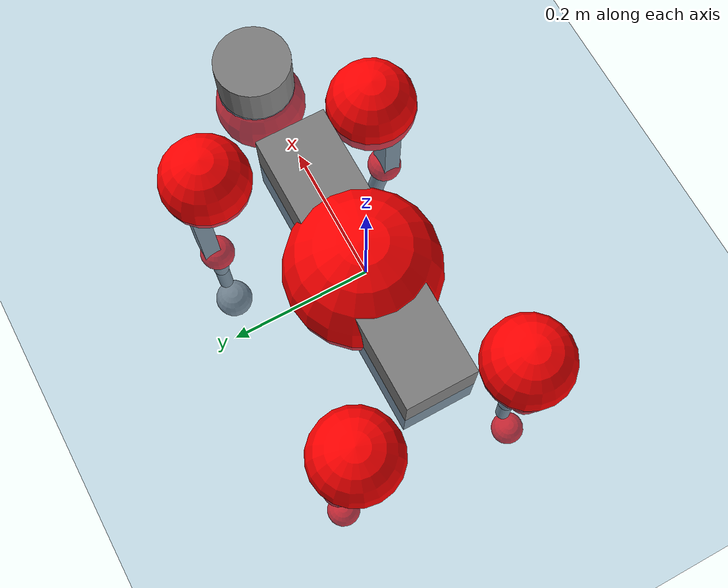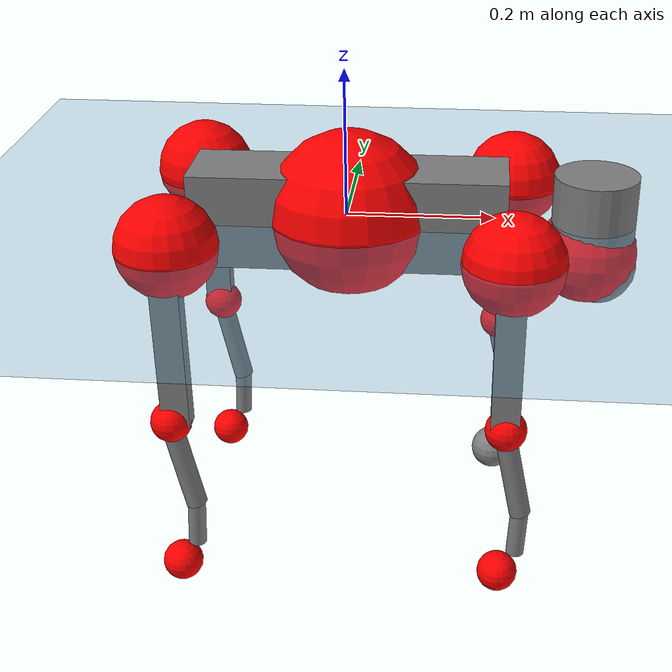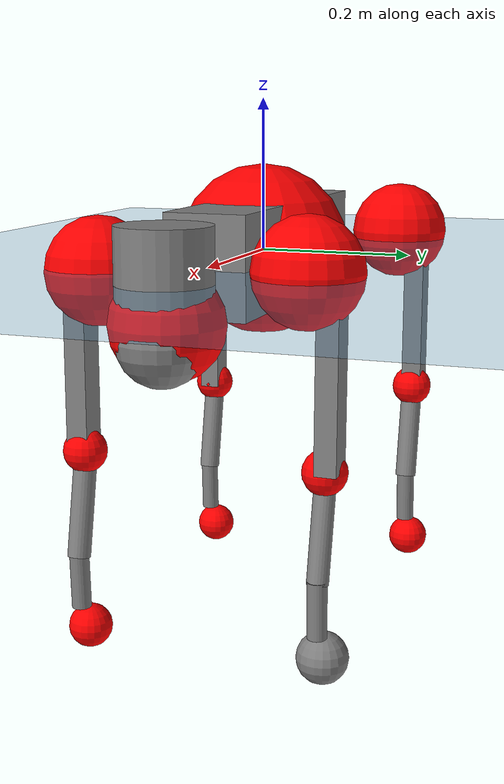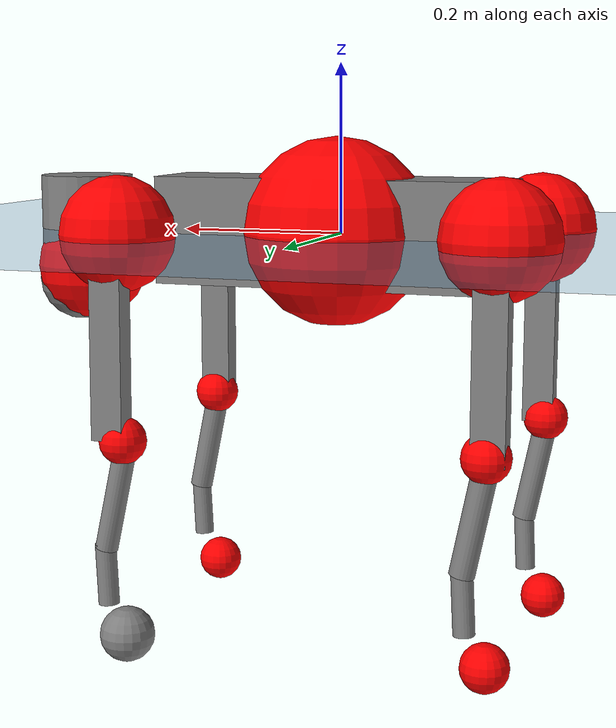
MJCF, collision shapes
<mujoco model="go2">
  <compiler angle="radian" assetdir="assets" balanceinertia="true" inertiafromgeom="false"/>

  <option timestep="0.005" density="1.2" viscosity="2e-05"/>

  <size nkey="1"/>

  <visual>
    <quality shadowsize="8192"/>
    <map shadowclip="0.5"/>
  </visual>

  <default>
    <default class="/">
      <geom contype="0" conaffinity="0" group="1" solref="-1000 -80"/>
      <site size="0.01 0.005 0.005" group="5"/>
      <general forcelimited="true" biastype="affine" gainprm="20" biasprm="0 -20 -0.5"/>
      <default class="go2">
        <joint armature="0.01" damping="0.01" frictionloss="0.2"/>
        <geom condim="1" margin="0.001"/>
        <default class="visual">
          <geom type="mesh" group="2"/>
        </default>
        <default class="collision">
          <geom group="3"/>
          <default class="foot">
            <geom size="0.022 0 0" condim="6" priority="1" friction="0.8 0.02 0.01" solimp="0.015 1 0.022"/>
          </default>
        </default>
        <default class="reward_collision_sphere">
          <geom group="5" rgba="1 0 0 1"/>
        </default>
      </default>
    </default>
  </default>

  <asset>
    <texture type="skybox" colorspace="auto" name="//unnamed_texture_0" builtin="gradient" rgb1="0.95 0.95 0.95" rgb2="0.95 0.95 0.95" width="100" height="600"/>
    <texture type="2d" colorspace="auto" name="texplane" builtin="checker" rgb1="0.345 0.575 0.748" rgb2="0.345 0.575 0.748" markrgb="1 1 1" width="512" height="512"/>
    <material name="MatPlane" class="/" texture="texplane" texuniform="true" texrepeat="2 2" specular="0.9"/>
    <material name="metal" class="/" rgba="0.9 0.95 0.95 1"/>
    <material name="black" class="/" rgba="0 0 0 1"/>
    <material name="white" class="/"/>
    <material name="gray" class="/" rgba="0.671705 0.692426 0.77427 1"/>
    <mesh name="base_0" class="/" file="base_0.obj"/>
    <mesh name="base_1" class="/" file="base_1.obj"/>
    <mesh name="base_2" class="/" file="base_2.obj"/>
    <mesh name="base_3" class="/" file="base_3.obj"/>
    <mesh name="base_4" class="/" file="base_4.obj"/>
    <mesh name="hip_0" class="/" file="hip_0.obj"/>
    <mesh name="hip_1" class="/" file="hip_1.obj"/>
    <mesh name="thigh_0" class="/" file="thigh_0.obj"/>
    <mesh name="thigh_1" class="/" file="thigh_1.obj"/>
    <mesh name="thigh_mirror_0" class="/" file="thigh_mirror_0.obj"/>
    <mesh name="thigh_mirror_1" class="/" file="thigh_mirror_1.obj"/>
    <mesh name="calf_0" class="/" file="calf_0.obj"/>
    <mesh name="calf_1" class="/" file="calf_1.obj"/>
    <mesh name="calf_mirror_0" class="/" file="calf_mirror_0.obj"/>
    <mesh name="calf_mirror_1" class="/" file="calf_mirror_1.obj"/>
    <mesh name="foot" class="/" file="foot.obj"/>
  </asset>

  <worldbody>
    <geom name="floor" class="/" size="100 100 0.125" type="plane" group="0" material="MatPlane"/>
    <light name="toplight_shadow" class="/" pos="0 0 5" dir="0.0990148 0.0990148 -0.990148" type="directional" ambient="0.04 0.04 0.04" diffuse="0.55 0.55 0.55" specular="0.12 0.12 0.12"/>
    <light name="toplight_fill" class="/" pos="0 0 5" dir="0.0990148 0.0990148 -0.990148" type="directional" castshadow="false" ambient="0.04 0.04 0.04" diffuse="0.3 0.3 0.3" specular="0.08 0.08 0.08"/>
    <body name="trunk" childclass="go2" pos="0.0047577 0.00171358 0.00231662" quat="0.999998 -0.00112721 -0.000850903 0.00126016">
      <inertial pos="0.0267443 -0.00282666 -0.00371206" quat="-0.0135217 0.700272 0.0188539 0.713499" mass="10.224" diaginertia="0.19246 0.178527 0.0361904"/>
      <joint name="//unnamed_joint_0" type="free" armature="0" damping="0" frictionloss="0"/>
      <geom name="//unnamed_geom_1" class="visual" material="black" mesh="base_0"/>
      <geom name="//unnamed_geom_2" class="visual" material="black" mesh="base_1"/>
      <geom name="//unnamed_geom_3" class="visual" material="black" mesh="base_2"/>
      <geom name="//unnamed_geom_4" class="visual" material="white" mesh="base_3"/>
      <geom name="//unnamed_geom_5" class="visual" material="gray" mesh="base_4"/>
      <geom name="trunk_1" class="collision" size="0.212529 0.0528215 0.0644027" type="box"/>
      <geom name="trunk_2" class="collision" size="0.0564936 0.0508442" pos="0.328292 0 0.011101" type="cylinder"/>
      <geom name="trunk_3" class="collision" size="0.053104" pos="0.337507 0 -0.0666058"/>
      <geom name="//unnamed_geom_9" class="reward_collision_sphere" size="0.112987"/>
      <geom name="//unnamed_geom_10" class="reward_collision_sphere" size="0.0677923" pos="0.322532 0 -0.0499543"/>
      <site name="imu" pos="-0.0438448 0.0493381 0.0501867" size="0.0112987"/>
      <camera name="track" pos="0 -2.25524 0" quat="0.707107 0.707107 0 0" mode="trackcom"/>
      <camera name="ego_camera" pos="0.359393 0 0.0499543" quat="-0.5 -0.5 0.5 0.5"/>
      <body name="FL_hip" pos="0.22258 0.0544882 0.00238777" quat="0.999989 -0.00064808 -0.0035071 -0.00310052">
        <inertial pos="-0.00376456 0.00447153 -0.000623926" quat="0.517377 0.494606 0.502346 0.485114" mass="0.880992" diaginertia="0.0016031 0.000979481 0.000704786"/>
        <joint name="FL_hip_joint" pos="0 0 0" axis="0.999834 -0.0080813 -0.0163454" range="-1.20342 1.04673" armature="0.00807502" damping="0.0287574" frictionloss="0.207512"/>
        <geom name="//unnamed_geom_11" class="visual" material="metal" mesh="hip_0"/>
        <geom name="//unnamed_geom_12" class="visual" material="gray" mesh="hip_1"/>
        <geom name="//unnamed_geom_13" class="collision" size="0.0519741 0.0225974" pos="0 0.0902096 0" quat="0.707107 0.707107 0 0" type="cylinder"/>
        <geom name="//unnamed_geom_14" class="reward_collision_sphere" size="0.0677923" pos="0 0.0789334 0"/>
        <body name="FL_thigh" pos="-0.002295 0.10754 0.00135823" quat="1 6.23114e-06 -0.000166844 6.81274e-05">
          <inertial pos="-0.00588285 -0.0171624 -0.0263889" quat="0.829696 0.0840428 -0.0195021 0.551508" mass="1.67207" diaginertia="0.0125887 0.0112903 0.00154183"/>
          <joint name="FL_thigh_joint" pos="0 0 0" axis="0.00814616 0.999948 -0.00606962" range="-1.57218 3.30406" armature="0.0129034" damping="0.0568855" frictionloss="0.22704"/>
          <geom name="//unnamed_geom_15" class="visual" material="metal" mesh="thigh_0"/>
          <geom name="//unnamed_geom_16" class="visual" material="gray" mesh="thigh_1"/>
          <geom name="//unnamed_geom_17" class="collision" size="0.120331 0.0138409 0.0192078" pos="0 0 -0.118225" quat="0.707107 0 0.707107 0" type="box"/>
          <body name="FL_calf" pos="-0.0102496 -0.00865459 -0.241052" quat="1 -0.000144911 -1.31112e-05 8.74303e-06">
            <inertial pos="0.00708837 0.0022874 -0.161227" quat="0.71031 0.00256382 -0.00479373 0.703868" mass="0.319652" diaginertia="0.00290574 0.00268761 9.08827e-05"/>
            <joint name="FL_calf_joint" pos="0 0 0" axis="0.00372067 0.999991 -0.00202475" stiffness="0.0482316" range="-2.80709 -0.695818" armature="0.0115488" damping="0" frictionloss="0.205088"/>
            <geom name="//unnamed_geom_18" class="visual" material="gray" mesh="calf_0"/>
            <geom name="//unnamed_geom_19" class="visual" material="black" mesh="calf_1"/>
            <geom name="FL_calf0" class="collision" size="0.0135585 0.0677923" pos="0.0092152 0 -0.0666058" quat="0.994493 0 -0.104807 0" type="cylinder"/>
            <geom name="//unnamed_geom_21" class="collision" size="0.0124286 0.0367208" pos="0.023038 0 -0.164294" quat="0.999688 0 0.0249974 0" type="cylinder"/>
            <geom name="//unnamed_geom_22" class="visual" pos="0 0 -0.236451" quat="1 0 0 0" material="black" mesh="foot"/>
            <geom name="FL_foot" class="foot" size="0.032881" pos="-0.0023038 0 -0.236451"/>
            <geom name="//unnamed_geom_24" class="reward_collision_sphere" size="0.0282468"/>
            <geom name="//unnamed_geom_25" class="reward_collision_sphere" size="0.0282468" pos="-0.0023038 0 -0.236451"/>
            <site name="FL_foot" class="foot" pos="-0.0023038 0 -0.236451" size="0.0112987"/>
          </body>
        </body>
      </body>
      <body name="FR_hip" pos="0.220631 -0.0547595 -0.00839343" quat="0.999999 -0.000174348 -7.31549e-05 0.00104827">
        <inertial pos="-0.00668702 0.00214221 0.00192346" quat="0.498084 0.472559 0.517327 0.510856" mass="0.87543" diaginertia="0.00165332 0.000956146 0.000735618"/>
        <joint name="FR_hip_joint" pos="0 0 0" axis="0.99997 -0.00569306 0.00524447" stiffness="0.0124769" range="-1.1484 1.09094" armature="0.0110792" damping="0" frictionloss="0.221748"/>
        <geom name="//unnamed_geom_26" class="visual" pos="0 1.52653e-10 6.54762e-09" quat="4.63268e-05 1 0 0" material="metal" mesh="hip_0"/>
        <geom name="//unnamed_geom_27" class="visual" pos="0 2.47469e-10 -1.61948e-08" quat="4.63268e-05 1 0 0" material="gray" mesh="hip_1"/>
        <geom name="//unnamed_geom_28" class="collision" size="0.0519741 0.0225974" pos="0 -0.0902096 0" quat="0.707107 0.707107 0 0" type="cylinder"/>
        <geom name="//unnamed_geom_29" class="reward_collision_sphere" size="0.0677923" pos="0 -0.0789334 0"/>
        <body name="FR_thigh" pos="-0.00204079 -0.107802 0.00585948" quat="1 1.56965e-05 -1.97349e-05 -1.57437e-05">
          <inertial pos="-0.00372635 0.0248491 -0.0276728" quat="0.556924 0.00964084 0.124609 0.821106" mass="1.48766" diaginertia="0.0111529 0.00951452 0.00132316"/>
          <joint name="FR_thigh_joint" pos="0 0 0" axis="0.000349742 -0.999952 0.00977682" stiffness="0.00141466" range="-3.32417 1.4545" armature="0.0143383" damping="0.019269" frictionloss="0.236518"/>
          <geom name="//unnamed_geom_30" class="visual" material="metal" mesh="thigh_mirror_0"/>
          <geom name="//unnamed_geom_31" class="visual" material="gray" mesh="thigh_mirror_1"/>
          <geom name="//unnamed_geom_32" class="collision" size="0.120331 0.0138409 0.0192078" pos="0 0 -0.118225" quat="0.707107 0 0.707107 0" type="box"/>
          <body name="FR_calf" pos="0.00170454 0.00258668 -0.23573" quat="1 -0.000184367 0.000145756 -0.000167443">
            <inertial pos="0.00851699 0.00215741 -0.167186" quat="0.69878 -0.016013 -0.00178804 0.715156" mass="0.419852" diaginertia="0.00335485 0.00264499 0.000110658"/>
            <joint name="FR_calf_joint" pos="0 0 0" axis="-0.000277627 -1 -0.000508803" stiffness="0.0149325" range="0.866352 2.77255" armature="0.00829736" damping="0.00365353" frictionloss="0.223665"/>
            <geom name="//unnamed_geom_33" class="visual" material="gray" mesh="calf_mirror_0"/>
            <geom name="//unnamed_geom_34" class="visual" material="black" mesh="calf_mirror_1"/>
            <geom name="FR_calf0" class="collision" size="0.0146883 0.0677923" pos="0.011519 0 -0.0666058" quat="0.995004 0 -0.0998334 0" type="cylinder"/>
            <geom name="//unnamed_geom_36" class="collision" size="0.0124286 0.0367208" pos="0.023038 0 -0.164294" quat="0.999688 0 0.0249974 0" type="cylinder"/>
            <geom name="//unnamed_geom_37" class="visual" pos="0 0 -0.236451" quat="1 0 0 0" material="black" mesh="foot"/>
            <geom name="FR_foot" class="foot" size="0.0206028" pos="-0.0023038 0 -0.236451"/>
            <geom name="//unnamed_geom_39" class="reward_collision_sphere" size="0.0282468"/>
            <geom name="//unnamed_geom_40" class="reward_collision_sphere" size="0.0282468" pos="-0.0023038 0 -0.236451"/>
            <site name="FR_foot" class="foot" pos="-0.0023038 0 -0.236451" size="0.0112987"/>
          </body>
        </body>
      </body>
      <body name="RL_hip" pos="-0.224412 0.0542798 0.00818194" quat="1 -6.31302e-05 0.000461728 0.000600977">
        <inertial pos="0.00723896 0.000152622 0.00797995" quat="0.51136 0.500106 0.495316 0.493018" mass="0.862712" diaginertia="0.00159995 0.00111722 0.000810268"/>
        <joint name="RL_hip_joint" pos="0 0 0" axis="-0.999948 0.00386997 0.00942881" stiffness="0.00139747" range="-1.23668 0.895909" armature="0.0110005" damping="0.0298339" frictionloss="0.140449"/>
        <geom name="//unnamed_geom_41" class="visual" pos="-3.64177e-10 0 -7.13871e-08" quat="4.63268e-05 0 1 0" material="metal" mesh="hip_0"/>
        <geom name="//unnamed_geom_42" class="visual" pos="-5.90375e-10 0 -6.33102e-08" quat="4.63268e-05 0 1 0" material="gray" mesh="hip_1"/>
        <geom name="//unnamed_geom_43" class="collision" size="0.0519741 0.0225974" pos="0 0.0902096 0" quat="0.707107 0.707107 0 0" type="cylinder"/>
        <geom name="//unnamed_geom_44" class="reward_collision_sphere" size="0.0677923" pos="0 0.0789334 0"/>
        <body name="RL_thigh" pos="0.00147263 0.106476 -0.000614503" quat="1 6.21883e-05 -6.86412e-05 -3.36929e-06">
          <inertial pos="0.00294272 -0.023708 -0.0265151" quat="0.835202 0.118312 -0.0204546 0.536676" mass="1.60665" diaginertia="0.0131057 0.0107019 0.00159871"/>
          <joint name="RL_thigh_joint" pos="0 0 0" axis="0.0174178 0.999375 -0.0307658" stiffness="0.000583477" range="-0.373094 4.51574" armature="0.0109651" damping="0.00733171" frictionloss="0.211695"/>
          <geom name="//unnamed_geom_45" class="visual" material="metal" mesh="thigh_0"/>
          <geom name="//unnamed_geom_46" class="visual" material="gray" mesh="thigh_1"/>
          <geom name="//unnamed_geom_47" class="collision" size="0.120331 0.0138409 0.0192078" pos="0 0 -0.118225" quat="0.707107 0 0.707107 0" type="box"/>
          <body name="RL_calf" pos="0.0038889 -0.00158745 -0.23128" quat="1 -0.000730117 0.000339267 -0.000143401">
            <inertial pos="0.00421727 0.00271569 -0.161148" quat="0.72287 -0.0164126 0.0112692 0.690697" mass="0.372358" diaginertia="0.00303834 0.00264303 9.05081e-05"/>
            <joint name="RL_calf_joint" pos="0 0 0" axis="-0.00212737 0.999917 -0.0127397" stiffness="0.049663" range="-2.72979 -0.835214" armature="0.0118781" damping="0.00706849" frictionloss="0.18974"/>
            <geom name="//unnamed_geom_48" class="visual" material="gray" mesh="calf_0"/>
            <geom name="//unnamed_geom_49" class="visual" material="black" mesh="calf_1"/>
            <geom name="RL_calf0" class="collision" size="0.0146883 0.0677923" pos="0.011519 0 -0.0666058" quat="0.995004 0 -0.0998334 0" type="cylinder"/>
            <geom name="//unnamed_geom_51" class="collision" size="0.0124286 0.0367208" pos="0.023038 0 -0.164294" quat="0.999688 0 0.0249974 0" type="cylinder"/>
            <geom name="//unnamed_geom_52" class="visual" pos="0 0 -0.236451" quat="1 0 0 0" material="black" mesh="foot"/>
            <geom name="RL_foot" class="foot" size="0.0238193" pos="-0.0023038 0 -0.236451"/>
            <geom name="//unnamed_geom_54" class="reward_collision_sphere" size="0.0282468"/>
            <geom name="//unnamed_geom_55" class="reward_collision_sphere" size="0.0282468" pos="-0.0023038 0 -0.236451"/>
            <site name="RL_foot" class="foot" pos="-0.0023038 0 -0.236451" size="0.0112987"/>
          </body>
        </body>
      </body>
      <body name="RR_hip" pos="-0.22222 -0.0525734 -0.000144123" quat="1 -0.000247096 0.000326819 -6.13678e-05">
        <inertial pos="0.00778155 -0.00947805 0.00464707" quat="0.49933 0.497706 0.497875 0.505053" mass="1.06964" diaginertia="0.00196281 0.00119309 0.00089532"/>
        <joint name="RR_hip_joint" pos="0 0 0" axis="-0.999991 -0.00210227 0.00377492" range="-1.06493 1.16863" armature="0.0127235" damping="0.0469752" frictionloss="0.218847"/>
        <geom name="//unnamed_geom_56" class="visual" pos="3.63336e-10 1.52653e-10 -7.79347e-08" quat="2.14617e-09 4.63268e-05 4.63268e-05 -1" material="metal" mesh="hip_0"/>
        <geom name="//unnamed_geom_57" class="visual" pos="5.92454e-10 2.47469e-10 -4.71154e-08" quat="2.14617e-09 4.63268e-05 4.63268e-05 -1" material="gray" mesh="hip_1"/>
        <geom name="//unnamed_geom_58" class="collision" size="0.0519741 0.0225974" pos="0 -0.0902096 0" quat="0.707107 0.707107 0 0" type="cylinder"/>
        <geom name="//unnamed_geom_59" class="reward_collision_sphere" size="0.0677923" pos="0 -0.0789334 0"/>
        <body name="RR_thigh" pos="0.00177451 -0.108032 -0.00832889" quat="1 9.83409e-05 -0.000319227 0.000208956">
          <inertial pos="-0.000645483 0.0203268 -0.0362522" quat="0.550608 -0.0178519 0.0840138 0.830333" mass="1.92962" diaginertia="0.0127244 0.0111955 0.00147607"/>
          <joint name="RR_thigh_joint" pos="0 0 0" axis="-0.000708923 -0.99992 0.012665" range="-4.37214 0.374215" armature="0.0120848" damping="0.0132262" frictionloss="0.297613"/>
          <geom name="//unnamed_geom_60" class="visual" material="metal" mesh="thigh_mirror_0"/>
          <geom name="//unnamed_geom_61" class="visual" material="gray" mesh="thigh_mirror_1"/>
          <geom name="//unnamed_geom_62" class="collision" size="0.120331 0.0138409 0.0192078" pos="0 0 -0.118225" quat="0.707107 0 0.707107 0" type="box"/>
          <body name="RR_calf" pos="-0.00857172 -0.00172981 -0.235764" quat="1 0.00041073 0.000436133 -2.46335e-05">
            <inertial pos="0.00672446 0.00104289 -0.157093" quat="0.705884 -0.0113071 0.00448933 0.708223" mass="0.390573" diaginertia="0.00313941 0.00273728 9.66808e-05"/>
            <joint name="RR_calf_joint" pos="0 0 0" axis="0.0180913 -0.999807 0.00762315" stiffness="0.02726" range="0.822231 2.66015" armature="0.0122601" damping="0.0535513" frictionloss="0.20946"/>
            <geom name="//unnamed_geom_63" class="visual" material="gray" mesh="calf_mirror_0"/>
            <geom name="//unnamed_geom_64" class="visual" material="black" mesh="calf_mirror_1"/>
            <geom name="RR_calf0" class="collision" size="0.0146883 0.0677923" pos="0.011519 0 -0.0666058" quat="0.995004 0 -0.0998334 0" type="cylinder"/>
            <geom name="//unnamed_geom_66" class="collision" size="0.0124286 0.0367208" pos="0.023038 0 -0.164294" quat="0.999688 0 0.0249974 0" type="cylinder"/>
            <geom name="//unnamed_geom_67" class="visual" pos="0 0 -0.236451" quat="1 0 0 0" material="black" mesh="foot"/>
            <geom name="RR_foot" class="foot" size="0.0229475" pos="-0.0023038 0 -0.236451"/>
            <geom name="//unnamed_geom_69" class="reward_collision_sphere" size="0.0282468"/>
            <geom name="//unnamed_geom_70" class="reward_collision_sphere" size="0.0282468" pos="-0.0023038 0 -0.236451"/>
            <site name="RR_foot" class="foot" pos="-0.0023038 0 -0.236451" size="0.0112987"/>
          </body>
        </body>
      </body>
    </body>
  </worldbody>

  <contact>
    <pair class="/" geom1="floor" geom2="FL_foot" name="//unnamed_contact_0"/>
    <pair class="/" geom1="floor" geom2="FR_foot" name="//unnamed_contact_1"/>
    <pair class="/" geom1="floor" geom2="RL_foot" name="//unnamed_contact_2"/>
    <pair class="/" geom1="floor" geom2="RR_foot" name="//unnamed_contact_3"/>
  </contact>

  <actuator>
    <general name="FL_hip" class="/" joint="FL_hip_joint" forcerange="-28.2435 28.2435" gainprm="22.8531" biasprm="0 -22.8531 -0.465182"/>
    <general name="FL_thigh" class="/" joint="FL_thigh_joint" forcerange="-20.0751 20.0751" gainprm="22.8531" biasprm="0 -22.8531 -0.465182"/>
    <general name="FL_calf" class="/" joint="FL_calf_joint" forcerange="-66.1383 66.1383" gainprm="22.8531" biasprm="0 -22.8531 -0.465182"/>
    <general name="FR_hip" class="/" joint="FR_hip_joint" forcerange="-28.8218 28.8218" gainprm="22.8531" biasprm="0 -22.8531 -0.465182"/>
    <general name="FR_thigh" class="/" joint="FR_thigh_joint" forcerange="-23.3215 23.3215" gainprm="22.8531" biasprm="0 -22.8531 -0.465182"/>
    <general name="FR_calf" class="/" joint="FR_calf_joint" forcerange="-31.2735 31.2735" gainprm="22.8531" biasprm="0 -22.8531 -0.465182"/>
    <general name="RL_hip" class="/" joint="RL_hip_joint" forcerange="-18.7785 18.7785" gainprm="22.8531" biasprm="0 -22.8531 -0.465182"/>
    <general name="RL_thigh" class="/" joint="RL_thigh_joint" forcerange="-24.7238 24.7238" gainprm="22.8531" biasprm="0 -22.8531 -0.465182"/>
    <general name="RL_calf" class="/" joint="RL_calf_joint" forcerange="-56.0417 56.0417" gainprm="22.8531" biasprm="0 -22.8531 -0.465182"/>
    <general name="RR_hip" class="/" joint="RR_hip_joint" forcerange="-24.7912 24.7912" gainprm="22.8531" biasprm="0 -22.8531 -0.465182"/>
    <general name="RR_thigh" class="/" joint="RR_thigh_joint" forcerange="-36.3412 36.3412" gainprm="22.8531" biasprm="0 -22.8531 -0.465182"/>
    <general name="RR_calf" class="/" joint="RR_calf_joint" forcerange="-62.8135 62.8135" gainprm="22.8531" biasprm="0 -22.8531 -0.465182"/>
  </actuator>

  <sensor>
    <gyro site="imu" name="imu_angular_velocity"/>
    <velocimeter site="imu" name="imu_linear_velocity"/>
    <framelinvel objtype="site" objname="FL_foot" name="FL_foot_global_linear_velocity"/>
    <framelinvel objtype="site" objname="FR_foot" name="FR_foot_global_linear_velocity"/>
    <framelinvel objtype="site" objname="RL_foot" name="RL_foot_global_linear_velocity"/>
    <framelinvel objtype="site" objname="RR_foot" name="RR_foot_global_linear_velocity"/>
  </sensor>

  <keyframe>
    <key name="home" qpos="0 0 0.325 1 0 0 0 0.1 0.8 -1.5 -0.1 -0.8 1.5 -0.1 0.8 -1.5 0.1 -0.8 1.5"/>
  </keyframe>
</mujoco>
